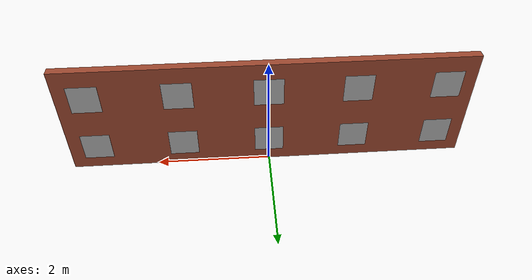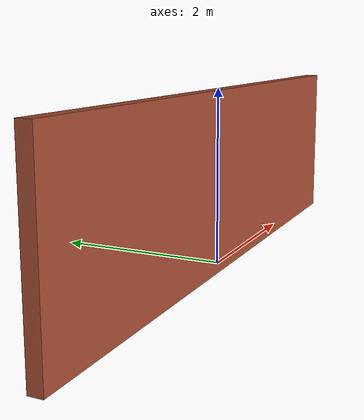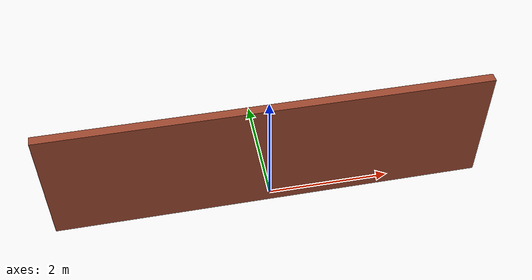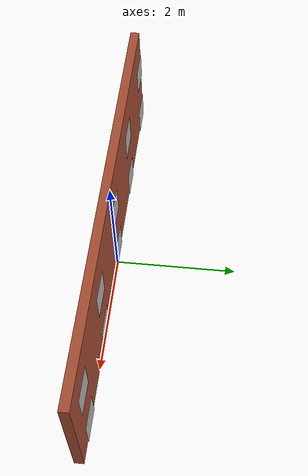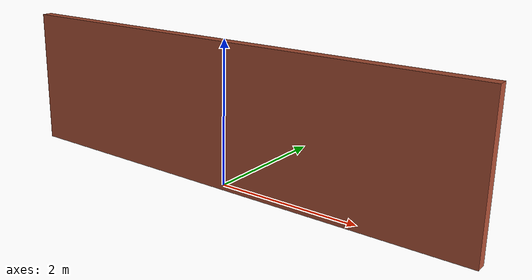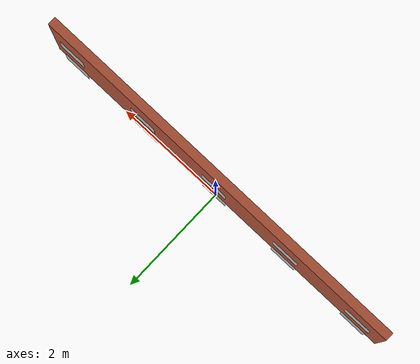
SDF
<?xml version='1.0'?>
<sdf version='1.6'>
  <model name='wall_with_num'>
    <pose frame=''>0 0 0 0 0 0</pose>
    <link name='Wall_2'>
      <collision name='Wall_2_Collision'>
        <geometry>
          <box>
            <size>7 0.15 2</size>
          </box>
        </geometry>
        <pose frame=''>0 0 1 0 -0 0</pose>
      </collision>
      <visual name='Wall_2_Visual'>
        <pose frame=''>0 0 1 0 -0 0</pose>
        <geometry>
          <box>
            <size>7 0.15 2</size>
          </box>
        </geometry>
        <material>
          <script>
            <uri>file://media/materials/scripts/gazebo.material</uri>
            <name>Gazebo/Bricks</name>
          </script>
          <ambient>1 1 1 1</ambient>
        </material>
        <meta>
          <layer>0</layer>
        </meta>
      </visual>
      <pose frame=''>0 -0.075 0 0 -0 0</pose>

    </link>

    <link name="num_0">
      <pose frame=''>3 0.05 1.5 1.5707963 0 -3.1415926</pose>
      <collision name="collision">
          <geometry>
             <plane>
                <normal>0 0 0</normal>
                <size>0.5 0.5</size>
             </plane>
          </geometry>
          <surface>
             <friction>
                <ode>
                   <mu>100</mu>
                   <mu2>50</mu2>
                </ode>
             </friction>
          </surface>
       </collision>
       <visual name="visual">
          <cast_shadows>false</cast_shadows>
          <geometry>
             <plane>
                <normal>0 0 0</normal>
                <size>0.5 0.5</size>
             </plane>
          </geometry>
          <material>
             <script>
                <uri>model://wall_with_num/materials/scripts/numbers.material</uri>
                <uri>model://wall_with_num/materials/textures/</uri>
                <name>Numbers/0</name>
             </script>
          </material>
       </visual>
    </link>

    <link name="num_1">
      <pose frame=''>1.5 0.05 1.5 1.5707963 0 -3.1415926</pose>
      <collision name="collision">
          <geometry>
             <plane>
                <normal>0 0 0</normal>
                <size>0.5 0.5</size>
             </plane>
          </geometry>
          <surface>
             <friction>
                <ode>
                   <mu>100</mu>
                   <mu2>50</mu2>
                </ode>
             </friction>
          </surface>
       </collision>
       <visual name="visual">
          <cast_shadows>false</cast_shadows>
          <geometry>
             <plane>
                <normal>0 0 0</normal>
                <size>0.5 0.5</size>
             </plane>
          </geometry>
          <material>
             <script>
                <uri>model://wall_with_num/materials/scripts/numbers.material</uri>
                <uri>model://wall_with_num/materials/textures/</uri>
                <name>Numbers/1</name>
             </script>
          </material>
       </visual>
    </link>

    <link name="num_2">
      <pose frame=''>0 0.05 1.5 1.5707963 0 -3.1415926</pose>
      <collision name="collision">
          <geometry>
             <plane>
                <normal>0 0 0</normal>
                <size>0.5 0.5</size>
             </plane>
          </geometry>
          <surface>
             <friction>
                <ode>
                   <mu>100</mu>
                   <mu2>50</mu2>
                </ode>
             </friction>
          </surface>
       </collision>
       <visual name="visual">
          <cast_shadows>false</cast_shadows>
          <geometry>
             <plane>
                <normal>0 0 0</normal>
                <size>0.5 0.5</size>
             </plane>
          </geometry>
          <material>
             <script>
                <uri>model://wall_with_num/materials/scripts/numbers.material</uri>
                <uri>model://wall_with_num/materials/textures/</uri>
                <name>Numbers/2</name>
             </script>
          </material>
       </visual>
    </link>

    <link name="num_3">
      <pose frame=''>-1.5 0.05 1.5 1.5707963 0 -3.1415926</pose>
      <collision name="collision">
          <geometry>
             <plane>
                <normal>0 0 0</normal>
                <size>0.5 0.5</size>
             </plane>
          </geometry>
          <surface>
             <friction>
                <ode>
                   <mu>100</mu>
                   <mu2>50</mu2>
                </ode>
             </friction>
          </surface>
       </collision>
       <visual name="visual">
          <cast_shadows>false</cast_shadows>
          <geometry>
             <plane>
                <normal>0 0 0</normal>
                <size>0.5 0.5</size>
             </plane>
          </geometry>
          <material>
             <script>
                <uri>model://wall_with_num/materials/scripts/numbers.material</uri>
                <uri>model://wall_with_num/materials/textures/</uri>
                <name>Numbers/3</name>
             </script>
          </material>
       </visual>
    </link>

    <link name="num_4">
      <pose frame=''>-3 0.05 1.5 1.5707963 0 -3.1415926</pose>
      <collision name="collision">
          <geometry>
             <plane>
                <normal>0 0 0</normal>
                <size>0.5 0.5</size>
             </plane>
          </geometry>
          <surface>
             <friction>
                <ode>
                   <mu>100</mu>
                   <mu2>50</mu2>
                </ode>
             </friction>
          </surface>
       </collision>
       <visual name="visual">
          <cast_shadows>false</cast_shadows>
          <geometry>
             <plane>
                <normal>0 0 0</normal>
                <size>0.5 0.5</size>
             </plane>
          </geometry>
          <material>
             <script>
                <uri>model://wall_with_num/materials/scripts/numbers.material</uri>
                <uri>model://wall_with_num/materials/textures/</uri>
                <name>Numbers/4</name>
             </script>
          </material>
       </visual>
    </link>

    <link name="num_5">
      <pose frame=''>3 0.05 0.5 1.5707963 0 -3.1415926</pose>
      <collision name="collision">
          <geometry>
             <plane>
                <normal>0 0 0</normal>
                <size>0.5 0.5</size>
             </plane>
          </geometry>
          <surface>
             <friction>
                <ode>
                   <mu>100</mu>
                   <mu2>50</mu2>
                </ode>
             </friction>
          </surface>
       </collision>
       <visual name="visual">
          <cast_shadows>false</cast_shadows>
          <geometry>
             <plane>
                <normal>0 0 0</normal>
                <size>0.5 0.5</size>
             </plane>
          </geometry>
          <material>
             <script>
                <uri>model://wall_with_num/materials/scripts/numbers.material</uri>
                <uri>model://wall_with_num/materials/textures/</uri>
                <name>Numbers/5</name>
             </script>
          </material>
       </visual>
    </link>

    <link name="num_6">
      <pose frame=''>1.5 0.05 0.5 1.5707963 0 -3.1415926</pose>
      <collision name="collision">
          <geometry>
             <plane>
                <normal>0 0 0</normal>
                <size>0.5 0.5</size>
             </plane>
          </geometry>
          <surface>
             <friction>
                <ode>
                   <mu>100</mu>
                   <mu2>50</mu2>
                </ode>
             </friction>
          </surface>
       </collision>
       <visual name="visual">
          <cast_shadows>false</cast_shadows>
          <geometry>
             <plane>
                <normal>0 0 0</normal>
                <size>0.5 0.5</size>
             </plane>
          </geometry>
          <material>
             <script>
                <uri>model://wall_with_num/materials/scripts/numbers.material</uri>
                <uri>model://wall_with_num/materials/textures/</uri>
                <name>Numbers/6</name>
             </script>
          </material>
       </visual>
    </link>

    <link name="num_7">
      <pose frame=''>0 0.05 0.5 1.5707963 0 -3.1415926</pose>
      <collision name="collision">
          <geometry>
             <plane>
                <normal>0 0 0</normal>
                <size>0.5 0.5</size>
             </plane>
          </geometry>
          <surface>
             <friction>
                <ode>
                   <mu>100</mu>
                   <mu2>50</mu2>
                </ode>
             </friction>
          </surface>
       </collision>
       <visual name="visual">
          <cast_shadows>false</cast_shadows>
          <geometry>
             <plane>
                <normal>0 0 0</normal>
                <size>0.5 0.5</size>
             </plane>
          </geometry>
          <material>
             <script>
                <uri>model://wall_with_num/materials/scripts/numbers.material</uri>
                <uri>model://wall_with_num/materials/textures/</uri>
                <name>Numbers/7</name>
             </script>
          </material>
       </visual>
    </link>

    <link name="num_8">
      <pose frame=''>-1.5 0.05 0.5 1.5707963 0 -3.1415926</pose>
      <collision name="collision">
          <geometry>
             <plane>
                <normal>0 0 0</normal>
                <size>0.5 0.5</size>
             </plane>
          </geometry>
          <surface>
             <friction>
                <ode>
                   <mu>100</mu>
                   <mu2>50</mu2>
                </ode>
             </friction>
          </surface>
       </collision>
       <visual name="visual">
          <cast_shadows>false</cast_shadows>
          <geometry>
             <plane>
                <normal>0 0 0</normal>
                <size>0.5 0.5</size>
             </plane>
          </geometry>
          <material>
             <script>
                <uri>model://wall_with_num/materials/scripts/numbers.material</uri>
                <uri>model://wall_with_num/materials/textures/</uri>
                <name>Numbers/8</name>
             </script>
          </material>
       </visual>
    </link>

    <link name="num_9">
      <pose frame=''>-3 0.05 0.5 1.5707963 0 -3.1415926</pose>
      <collision name="collision">
          <geometry>
             <plane>
                <normal>0 0 0</normal>
                <size>0.5 0.5</size>
             </plane>
          </geometry>
          <surface>
             <friction>
                <ode>
                   <mu>100</mu>
                   <mu2>50</mu2>
                </ode>
             </friction>
          </surface>
       </collision>
       <visual name="visual">
          <cast_shadows>false</cast_shadows>
          <geometry>
             <plane>
                <normal>0 0 0</normal>
                <size>0.5 0.5</size>
             </plane>
          </geometry>
          <material>
             <script>
                <uri>model://wall_with_num/materials/scripts/numbers.material</uri>
                <uri>model://wall_with_num/materials/textures/</uri>
                <name>Numbers/9</name>
             </script>
          </material>
       </visual>
    </link>
    <static>1</static>
  </model>
</sdf>
